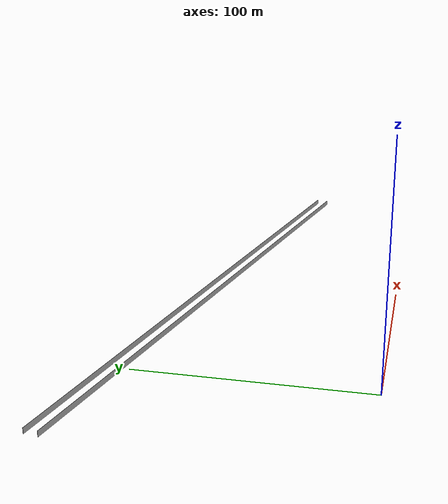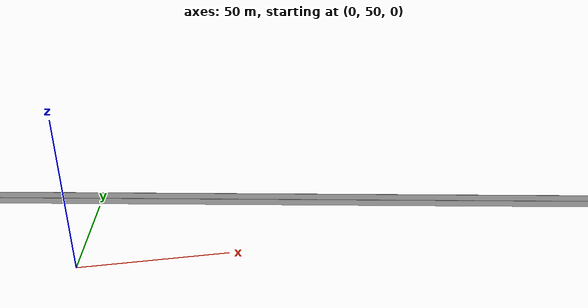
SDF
<?xml version="1.0" ?>
<sdf version="1.6">
  <model name="sps_1102">
    <pose frame="">0 0 0 0 -0 0</pose>
    <static>1</static>
    <self_collide>0</self_collide>
    <allow_auto_disable>0</allow_auto_disable>
    <link name="Wall1583">
      <kinematic>0</kinematic>
      <gravity>1</gravity>
      <self_collide>0</self_collide>
      <collision name="collision">
        <geometry>
          <box>
            <size>301.997 0.15 2.5</size>
          </box>
        </geometry>
        <pose frame="">0 0 0 0 -0 0</pose>
      </collision>
      <visual name="visual">
        <geometry>
          <box>
            <size>301.997 0.15 2.5</size>
          </box>
        </geometry>
        <pose frame="">0 0 0 0 -0 0</pose>
        <cast_shadows>1</cast_shadows>
        <transparency>0.0</transparency>
      </visual>
      <pose frame="">93.6293 88.542 1.25 0 0 -0.214252</pose>
    </link>
    <link name="Wall1585">
      <kinematic>0</kinematic>
      <gravity>1</gravity>
      <self_collide>0</self_collide>
      <collision name="collision">
        <geometry>
          <box>
            <size>301.606 0.15 2.5</size>
          </box>
        </geometry>
        <pose frame="">0 0 0 0 -0 0</pose>
      </collision>
      <visual name="visual">
        <geometry>
          <box>
            <size>301.606 0.15 2.5</size>
          </box>
        </geometry>
        <pose frame="">0 0 0 0 -0 0</pose>
        <cast_shadows>1</cast_shadows>
        <transparency>0.0</transparency>
      </visual>
      <pose frame="">92.5528 82.6767 1.25 0 -0 2.92734</pose>
    </link>
  </model>
</sdf>
